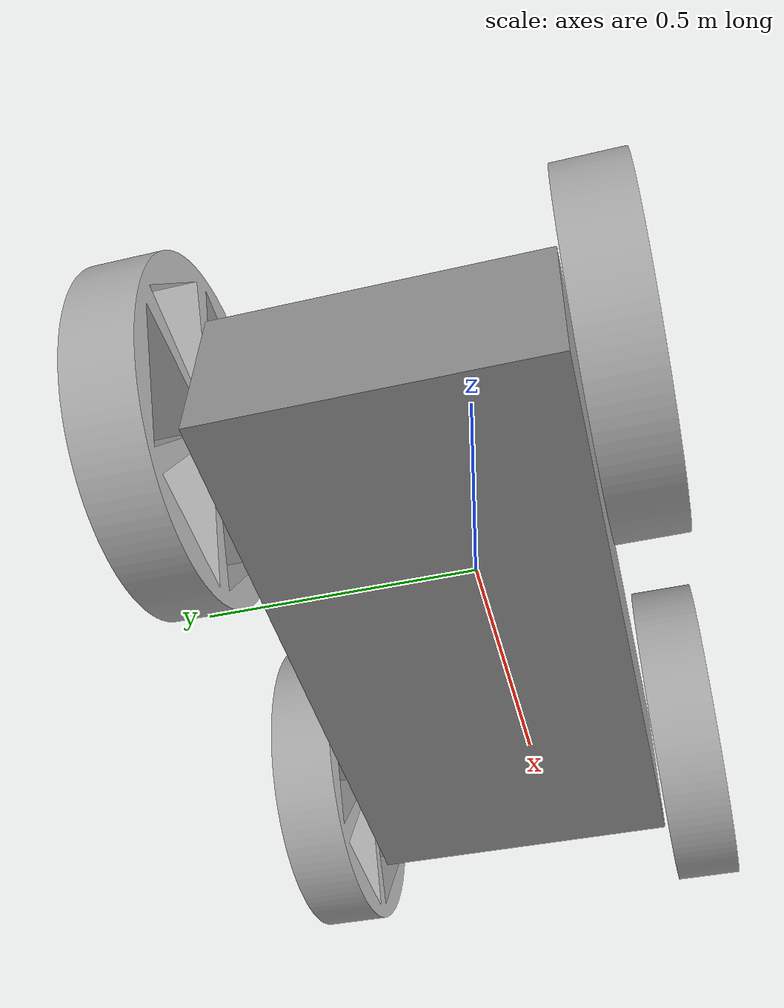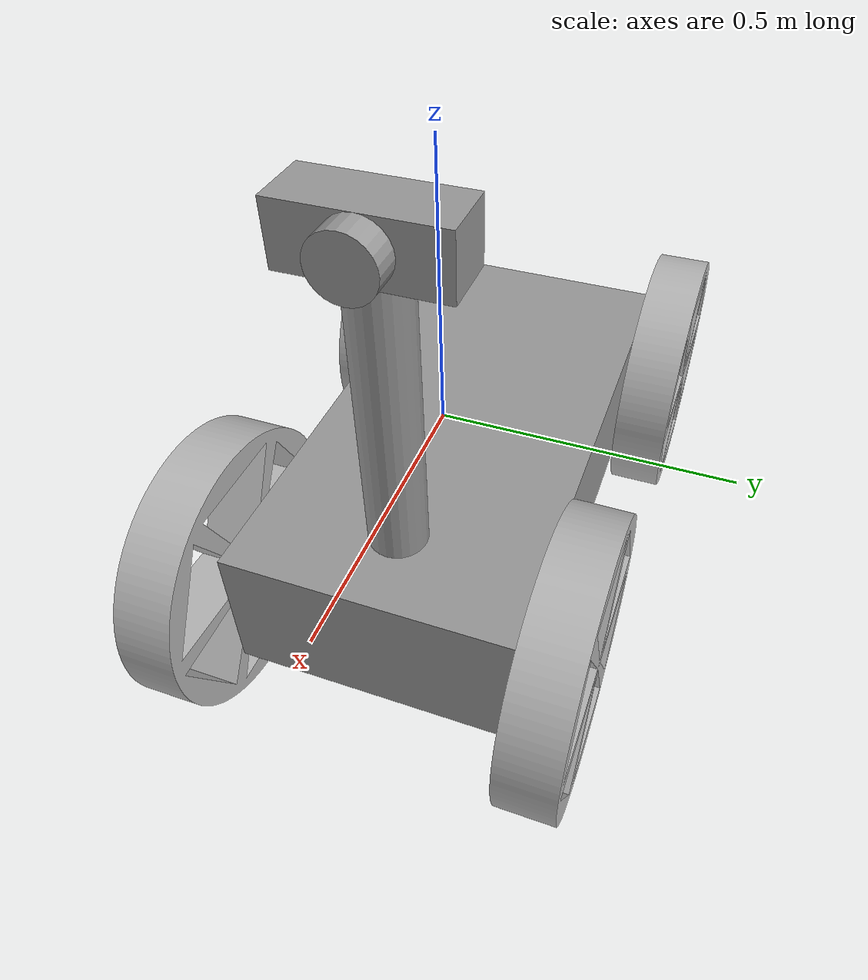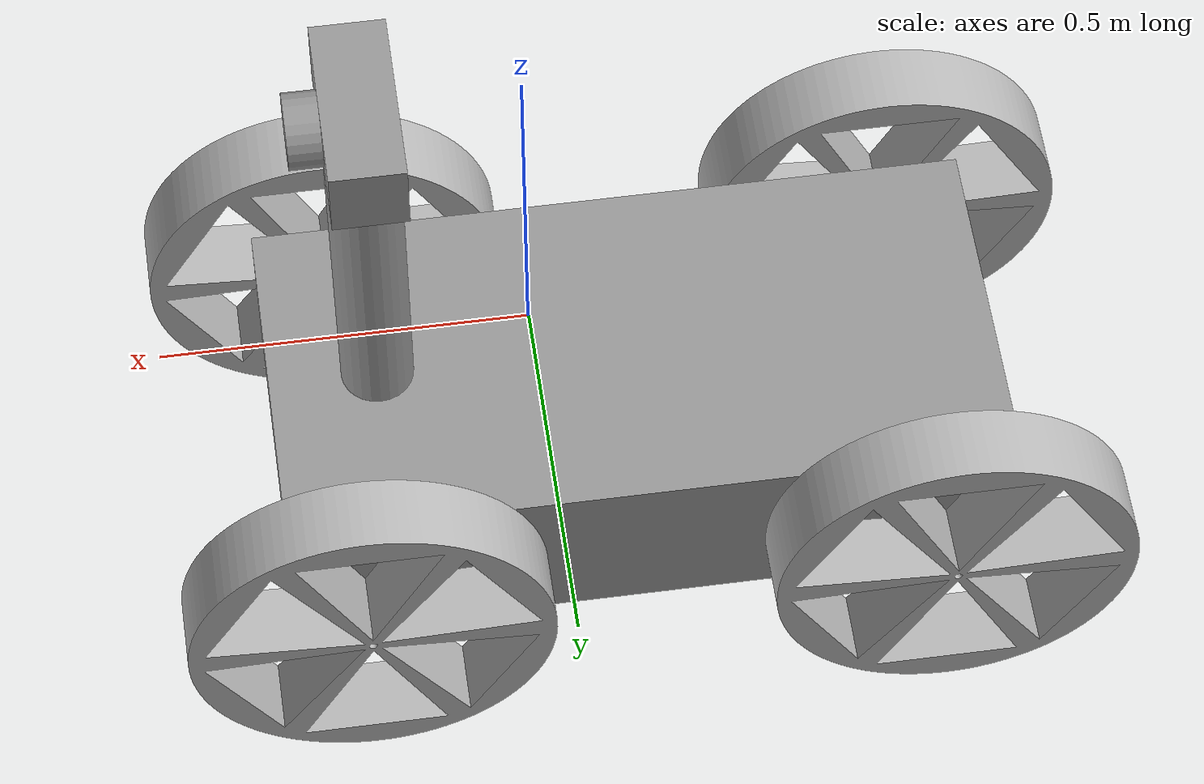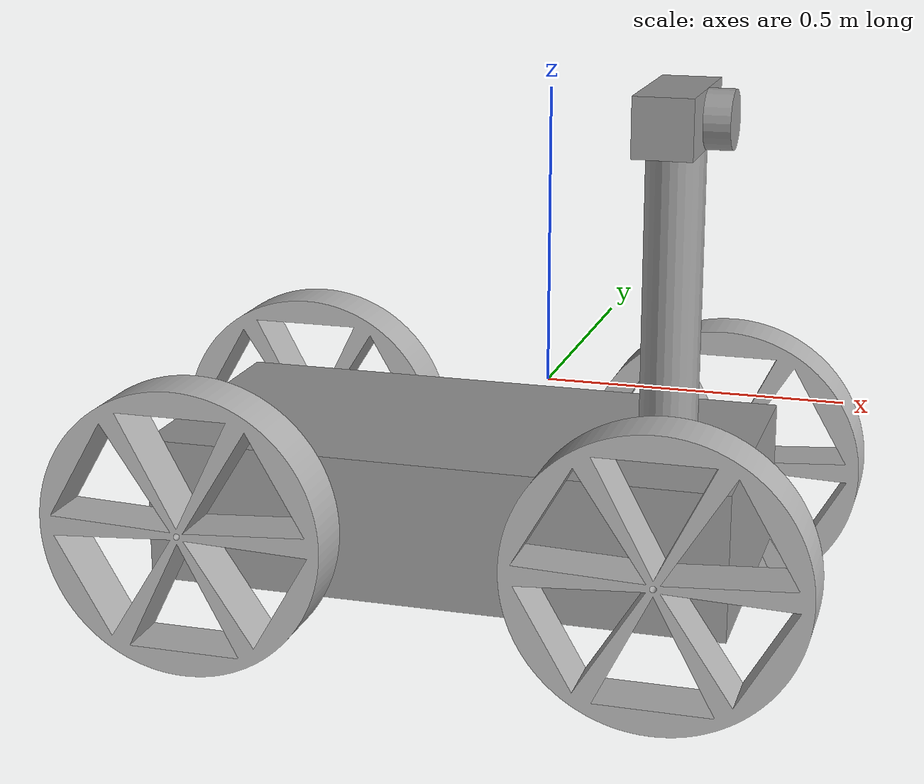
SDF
<?xml version='1.0'?>
<sdf version='1.7'>
  <model name='mobile_camera'>
    <link name='link_0'>
      <inertial>
        <mass>1</mass>
        <inertia>
          <ixx>0.166667</ixx>
          <ixy>0</ixy>
          <ixz>0</ixz>
          <iyy>0.166667</iyy>
          <iyz>0</iyz>
          <izz>0.166667</izz>
        </inertia>
        <pose>0 0 0 0 -0 0</pose>
      </inertial>
      <pose>-0.14 0 -0.215625 0 -0 0</pose>
      <gravity>1</gravity>
      <self_collide>0</self_collide>
      <kinematic>0</kinematic>
      <enable_wind>0</enable_wind>
      <visual name='visual'>
        <pose>0 0 0 0 -0 0</pose>
        <geometry>
          <box>
            <size>1 0.5 0.25</size>
          </box>
        </geometry>
        <material>
          <lighting>1</lighting>
          <script>
            <uri>file://media/materials/scripts/gazebo.material</uri>
            <name>Gazebo/Grey</name>
          </script>
          <shader type='pixel'>
            <normal_map>__default__</normal_map>
          </shader>
          <ambient>0.3 0.3 0.3 1</ambient>
          <diffuse>0.7 0.7 0.7 1</diffuse>
          <specular>0.01 0.01 0.01 1</specular>
          <emissive>0 0 0 1</emissive>
        </material>
        <transparency>0</transparency>
        <cast_shadows>1</cast_shadows>
      </visual>
      <collision name='collision'>
        <laser_retro>0</laser_retro>
        <max_contacts>10</max_contacts>
        <pose>0 0 0 0 -0 0</pose>
        <geometry>
          <box>
            <size>1 0.5 0.25</size>
          </box>
        </geometry>
        <surface>
          <friction>
            <ode>
              <mu>1</mu>
              <mu2>1</mu2>
              <fdir1>0 0 0</fdir1>
              <slip1>0</slip1>
              <slip2>0</slip2>
            </ode>
            <torsional>
              <coefficient>1</coefficient>
              <patch_radius>0</patch_radius>
              <surface_radius>0</surface_radius>
              <use_patch_radius>1</use_patch_radius>
              <ode>
                <slip>0</slip>
              </ode>
            </torsional>
          </friction>
          <bounce>
            <restitution_coefficient>0</restitution_coefficient>
            <threshold>1e+06</threshold>
          </bounce>
          <contact>
            <collide_without_contact>0</collide_without_contact>
            <collide_without_contact_bitmask>1</collide_without_contact_bitmask>
            <collide_bitmask>1</collide_bitmask>
            <ode>
              <soft_cfm>0</soft_cfm>
              <soft_erp>0.2</soft_erp>
              <kp>1e+13</kp>
              <kd>1</kd>
              <max_vel>0.01</max_vel>
              <min_depth>0</min_depth>
            </ode>
            <bullet>
              <split_impulse>1</split_impulse>
              <split_impulse_penetration_threshold>-0.01</split_impulse_penetration_threshold>
              <soft_cfm>0</soft_cfm>
              <soft_erp>0.2</soft_erp>
              <kp>1e+13</kp>
              <kd>1</kd>
            </bullet>
          </contact>
        </surface>
      </collision>
    </link>
    <link name='link_2'>
      <inertial>
        <mass>1</mass>
        <inertia>
          <ixx>0.145833</ixx>
          <ixy>0</ixy>
          <ixz>0</ixz>
          <iyy>0.145833</iyy>
          <iyz>0</iyz>
          <izz>0.125</izz>
        </inertia>
        <pose>0 0 0 0 -0 0</pose>
      </inertial>
      <pose>0.26 0.31 -0.215625 1.5708 -0 0</pose>
      <gravity>1</gravity>
      <self_collide>0</self_collide>
      <kinematic>0</kinematic>
      <enable_wind>0</enable_wind>
      <visual name='visual'>
        <pose>0 0 0 1.5708 -0 0</pose>
        <geometry>
          <mesh>
            <uri>file:///home/yousef/ros2_cpp_ws/src/cpp_pkg/models/meshes/wheel_red.obj</uri>
            <scale>1 1 1</scale>
          </mesh>
        </geometry>
      </visual>
      <collision name='collision'>
        <laser_retro>0</laser_retro>
        <max_contacts>10</max_contacts>
        <pose>0 0 0 0 -0 0</pose>
        <geometry>
          <cylinder>
            <radius>0.25</radius>
            <length>0.1</length>
          </cylinder>
        </geometry>
        <surface>
          <friction>
            <ode>
              <mu>1</mu>
              <mu2>1</mu2>
              <fdir1>0 0 0</fdir1>
              <slip1>0</slip1>
              <slip2>0</slip2>
            </ode>
            <torsional>
              <coefficient>1</coefficient>
              <patch_radius>0</patch_radius>
              <surface_radius>0</surface_radius>
              <use_patch_radius>1</use_patch_radius>
              <ode>
                <slip>0</slip>
              </ode>
            </torsional>
          </friction>
          <bounce>
            <restitution_coefficient>0</restitution_coefficient>
            <threshold>1e+06</threshold>
          </bounce>
          <contact>
            <collide_without_contact>0</collide_without_contact>
            <collide_without_contact_bitmask>1</collide_without_contact_bitmask>
            <collide_bitmask>1</collide_bitmask>
            <ode>
              <soft_cfm>0</soft_cfm>
              <soft_erp>0.2</soft_erp>
              <kp>1e+13</kp>
              <kd>1</kd>
              <max_vel>0.01</max_vel>
              <min_depth>0</min_depth>
            </ode>
            <bullet>
              <split_impulse>1</split_impulse>
              <split_impulse_penetration_threshold>-0.01</split_impulse_penetration_threshold>
              <soft_cfm>0</soft_cfm>
              <soft_erp>0.2</soft_erp>
              <kp>1e+13</kp>
              <kd>1</kd>
            </bullet>
          </contact>
        </surface>
      </collision>
    </link>
    <link name='link_2_clone'>
      <inertial>
        <mass>1</mass>
        <inertia>
          <ixx>0.145833</ixx>
          <ixy>0</ixy>
          <ixz>0</ixz>
          <iyy>0.145833</iyy>
          <iyz>0</iyz>
          <izz>0.125</izz>
        </inertia>
        <pose>0 0 0 0 -0 0</pose>
      </inertial>
      <pose>0.26 -0.31 -0.215625 1.5708 -0 0</pose>
      <gravity>1</gravity>
      <self_collide>0</self_collide>
      <kinematic>0</kinematic>
      <enable_wind>0</enable_wind>
      <visual name='visual'>
        <pose>0 0 0 1.5708 -0 0</pose>
        <geometry>
          <mesh>
            <uri>file:///home/yousef/ros2_cpp_ws/src/cpp_pkg/models/meshes/wheel_red.obj</uri>
            <scale>1 1 1</scale>
          </mesh>
        </geometry>
      </visual>
      <collision name='collision'>
        <laser_retro>0</laser_retro>
        <max_contacts>10</max_contacts>
        <pose>0 0 0 0 -0 0</pose>
        <geometry>
          <cylinder>
            <radius>0.25</radius>
            <length>0.1</length>
          </cylinder>
        </geometry>
        <surface>
          <friction>
            <ode>
              <mu>1</mu>
              <mu2>1</mu2>
              <fdir1>0 0 0</fdir1>
              <slip1>0</slip1>
              <slip2>0</slip2>
            </ode>
            <torsional>
              <coefficient>1</coefficient>
              <patch_radius>0</patch_radius>
              <surface_radius>0</surface_radius>
              <use_patch_radius>1</use_patch_radius>
              <ode>
                <slip>0</slip>
              </ode>
            </torsional>
          </friction>
          <bounce>
            <restitution_coefficient>0</restitution_coefficient>
            <threshold>1e+06</threshold>
          </bounce>
          <contact>
            <collide_without_contact>0</collide_without_contact>
            <collide_without_contact_bitmask>1</collide_without_contact_bitmask>
            <collide_bitmask>1</collide_bitmask>
            <ode>
              <soft_cfm>0</soft_cfm>
              <soft_erp>0.2</soft_erp>
              <kp>1e+13</kp>
              <kd>1</kd>
              <max_vel>0.01</max_vel>
              <min_depth>0</min_depth>
            </ode>
            <bullet>
              <split_impulse>1</split_impulse>
              <split_impulse_penetration_threshold>-0.01</split_impulse_penetration_threshold>
              <soft_cfm>0</soft_cfm>
              <soft_erp>0.2</soft_erp>
              <kp>1e+13</kp>
              <kd>1</kd>
            </bullet>
          </contact>
        </surface>
      </collision>
    </link>
    <link name='link_2_clone_0'>
      <inertial>
        <mass>1</mass>
        <inertia>
          <ixx>0.145833</ixx>
          <ixy>0</ixy>
          <ixz>0</ixz>
          <iyy>0.145833</iyy>
          <iyz>0</iyz>
          <izz>0.125</izz>
        </inertia>
        <pose>0 0 0 0 -0 0</pose>
      </inertial>
      <pose>-0.54 0.31 -0.215625 1.5708 -0 0</pose>
      <gravity>1</gravity>
      <self_collide>0</self_collide>
      <kinematic>0</kinematic>
      <enable_wind>0</enable_wind>
      <visual name='visual'>
        <pose>0 0 0 1.5708 -0 0</pose>
        <geometry>
          <mesh>
            <uri>file:///home/yousef/ros2_cpp_ws/src/cpp_pkg/models/meshes/wheel_red.obj</uri>
            <scale>1 1 1</scale>
          </mesh>
        </geometry>
      </visual>
      <collision name='collision'>
        <laser_retro>0</laser_retro>
        <max_contacts>10</max_contacts>
        <pose>0 0 0 0 -0 0</pose>
        <geometry>
          <cylinder>
            <radius>0.25</radius>
            <length>0.1</length>
          </cylinder>
        </geometry>
        <surface>
          <friction>
            <ode>
              <mu>0.1</mu>
              <mu2>0.1</mu2>
              <fdir1>0 0 0</fdir1>
              <slip1>0</slip1>
              <slip2>0</slip2>
            </ode>
            <torsional>
              <coefficient>1</coefficient>
              <patch_radius>0</patch_radius>
              <surface_radius>0</surface_radius>
              <use_patch_radius>1</use_patch_radius>
              <ode>
                <slip>0</slip>
              </ode>
            </torsional>
          </friction>
          <bounce>
            <restitution_coefficient>0</restitution_coefficient>
            <threshold>1e+06</threshold>
          </bounce>
          <contact>
            <collide_without_contact>0</collide_without_contact>
            <collide_without_contact_bitmask>1</collide_without_contact_bitmask>
            <collide_bitmask>1</collide_bitmask>
            <ode>
              <soft_cfm>0</soft_cfm>
              <soft_erp>0.2</soft_erp>
              <kp>1e+13</kp>
              <kd>1</kd>
              <max_vel>0.01</max_vel>
              <min_depth>0</min_depth>
            </ode>
            <bullet>
              <split_impulse>1</split_impulse>
              <split_impulse_penetration_threshold>-0.01</split_impulse_penetration_threshold>
              <soft_cfm>0</soft_cfm>
              <soft_erp>0.2</soft_erp>
              <kp>1e+13</kp>
              <kd>1</kd>
            </bullet>
          </contact>
        </surface>
      </collision>
    </link>
    <link name='link_2_clone_1'>
      <inertial>
        <mass>1</mass>
        <inertia>
          <ixx>0.145833</ixx>
          <ixy>0</ixy>
          <ixz>0</ixz>
          <iyy>0.145833</iyy>
          <iyz>0</iyz>
          <izz>0.125</izz>
        </inertia>
        <pose>0 0 0 0 -0 0</pose>
      </inertial>
      <pose>-0.54 -0.31 -0.215625 1.5708 -0 0</pose>
      <gravity>1</gravity>
      <self_collide>0</self_collide>
      <kinematic>0</kinematic>
      <enable_wind>0</enable_wind>
      <visual name='visual'>
        <pose>0 0 0 1.5708 -0 0</pose>
        <geometry>
          <mesh>
            <uri>file:///home/yousef/ros2_cpp_ws/src/cpp_pkg/models/meshes/wheel_red.obj</uri>
            <scale>1 1 1</scale>
          </mesh>
        </geometry>
      </visual>
      <collision name='collision'>
        <laser_retro>0</laser_retro>
        <max_contacts>10</max_contacts>
        <pose>0 0 0 0 -0 0</pose>
        <geometry>
          <cylinder>
            <radius>0.25</radius>
            <length>0.1</length>
          </cylinder>
        </geometry>
        <surface>
          <friction>
            <ode>
              <mu>0.1</mu>
              <mu2>0.1</mu2>
              <fdir1>0 0 0</fdir1>
              <slip1>0</slip1>
              <slip2>0</slip2>
            </ode>
            <torsional>
              <coefficient>1</coefficient>
              <patch_radius>0</patch_radius>
              <surface_radius>0</surface_radius>
              <use_patch_radius>1</use_patch_radius>
              <ode>
                <slip>0</slip>
              </ode>
            </torsional>
          </friction>
          <bounce>
            <restitution_coefficient>0</restitution_coefficient>
            <threshold>1e+06</threshold>
          </bounce>
          <contact>
            <collide_without_contact>0</collide_without_contact>
            <collide_without_contact_bitmask>1</collide_without_contact_bitmask>
            <collide_bitmask>1</collide_bitmask>
            <ode>
              <soft_cfm>0</soft_cfm>
              <soft_erp>0.2</soft_erp>
              <kp>1e+13</kp>
              <kd>1</kd>
              <max_vel>0.01</max_vel>
              <min_depth>0</min_depth>
            </ode>
            <bullet>
              <split_impulse>1</split_impulse>
              <split_impulse_penetration_threshold>-0.01</split_impulse_penetration_threshold>
              <soft_cfm>0</soft_cfm>
              <soft_erp>0.2</soft_erp>
              <kp>1e+13</kp>
              <kd>1</kd>
            </bullet>
          </contact>
        </surface>
      </collision>
    </link>
    <link name='link_3'>
      <inertial>
        <mass>1</mass>
        <inertia>
          <ixx>0.145833</ixx>
          <ixy>0</ixy>
          <ixz>0</ixz>
          <iyy>0.145833</iyy>
          <iyz>0</iyz>
          <izz>0.125</izz>
        </inertia>
        <pose>0 0 0 0 -0 0</pose>
      </inertial>
      <pose>0.21 0 0.159375 0 -0 0</pose>
      <gravity>1</gravity>
      <self_collide>0</self_collide>
      <kinematic>0</kinematic>
      <enable_wind>0</enable_wind>
      <visual name='visual'>
        <pose>0 0 0 0 -0 0</pose>
        <geometry>
          <cylinder>
            <radius>0.05</radius>
            <length>0.5</length>
          </cylinder>
        </geometry>
        <material>
          <lighting>1</lighting>
          <script>
            <uri>file://media/materials/scripts/gazebo.material</uri>
            <name>Gazebo/Grey</name>
          </script>
          <shader type='pixel'>
            <normal_map>__default__</normal_map>
          </shader>
          <ambient>0.3 0.3 0.3 1</ambient>
          <diffuse>0.7 0.7 0.7 1</diffuse>
          <specular>0.01 0.01 0.01 1</specular>
          <emissive>0 0 0 1</emissive>
        </material>
        <transparency>0</transparency>
        <cast_shadows>1</cast_shadows>
      </visual>
      <collision name='collision'>
        <laser_retro>0</laser_retro>
        <max_contacts>10</max_contacts>
        <pose>0 0 0 0 -0 0</pose>
        <geometry>
          <cylinder>
            <radius>0.05</radius>
            <length>0.5</length>
          </cylinder>
        </geometry>
        <surface>
          <friction>
            <ode>
              <mu>1</mu>
              <mu2>1</mu2>
              <fdir1>0 0 0</fdir1>
              <slip1>0</slip1>
              <slip2>0</slip2>
            </ode>
            <torsional>
              <coefficient>1</coefficient>
              <patch_radius>0</patch_radius>
              <surface_radius>0</surface_radius>
              <use_patch_radius>1</use_patch_radius>
              <ode>
                <slip>0</slip>
              </ode>
            </torsional>
          </friction>
          <bounce>
            <restitution_coefficient>0</restitution_coefficient>
            <threshold>1e+06</threshold>
          </bounce>
          <contact>
            <collide_without_contact>0</collide_without_contact>
            <collide_without_contact_bitmask>1</collide_without_contact_bitmask>
            <collide_bitmask>1</collide_bitmask>
            <ode>
              <soft_cfm>0</soft_cfm>
              <soft_erp>0.2</soft_erp>
              <kp>1e+13</kp>
              <kd>1</kd>
              <max_vel>0.01</max_vel>
              <min_depth>0</min_depth>
            </ode>
            <bullet>
              <split_impulse>1</split_impulse>
              <split_impulse_penetration_threshold>-0.01</split_impulse_penetration_threshold>
              <soft_cfm>0</soft_cfm>
              <soft_erp>0.2</soft_erp>
              <kp>1e+13</kp>
              <kd>1</kd>
            </bullet>
          </contact>
        </surface>
      </collision>
    </link>
    <link name='link_4'>
      <inertial>
        <mass>1</mass>
        <inertia>
          <ixx>0.166667</ixx>
          <ixy>0</ixy>
          <ixz>0</ixz>
          <iyy>0.166667</iyy>
          <iyz>0</iyz>
          <izz>0.166667</izz>
        </inertia>
        <pose>0 0 0 0 -0 0</pose>
      </inertial>
      <pose>0.21 0 0.459375 0 -0 0</pose>
      <gravity>1</gravity>
      <self_collide>0</self_collide>
      <kinematic>0</kinematic>
      <enable_wind>0</enable_wind>
      <visual name='visual'>
        <pose>0 0 0 0 -0 0</pose>
        <geometry>
          <box>
            <size>0.1 0.25 0.1</size>
          </box>
        </geometry>
        <material>
          <lighting>1</lighting>
          <script>
            <uri>file://media/materials/scripts/gazebo.material</uri>
            <name>Gazebo/Grey</name>
          </script>
          <shader type='pixel'>
            <normal_map>__default__</normal_map>
          </shader>
          <ambient>0.3 0.3 0.3 1</ambient>
          <diffuse>0.7 0.7 0.7 1</diffuse>
          <specular>0.01 0.01 0.01 1</specular>
          <emissive>0 0 0 1</emissive>
        </material>
        <transparency>0</transparency>
        <cast_shadows>1</cast_shadows>
      </visual>
      <collision name='collision'>
        <laser_retro>0</laser_retro>
        <max_contacts>10</max_contacts>
        <pose>0 0 0 0 -0 0</pose>
        <geometry>
          <box>
            <size>0.1 0.25 0.1</size>
          </box>
        </geometry>
        <surface>
          <friction>
            <ode>
              <mu>1</mu>
              <mu2>1</mu2>
              <fdir1>0 0 0</fdir1>
              <slip1>0</slip1>
              <slip2>0</slip2>
            </ode>
            <torsional>
              <coefficient>1</coefficient>
              <patch_radius>0</patch_radius>
              <surface_radius>0</surface_radius>
              <use_patch_radius>1</use_patch_radius>
              <ode>
                <slip>0</slip>
              </ode>
            </torsional>
          </friction>
          <bounce>
            <restitution_coefficient>0</restitution_coefficient>
            <threshold>1e+06</threshold>
          </bounce>
          <contact>
            <collide_without_contact>0</collide_without_contact>
            <collide_without_contact_bitmask>1</collide_without_contact_bitmask>
            <collide_bitmask>1</collide_bitmask>
            <ode>
              <soft_cfm>0</soft_cfm>
              <soft_erp>0.2</soft_erp>
              <kp>1e+13</kp>
              <kd>1</kd>
              <max_vel>0.01</max_vel>
              <min_depth>0</min_depth>
            </ode>
            <bullet>
              <split_impulse>1</split_impulse>
              <split_impulse_penetration_threshold>-0.01</split_impulse_penetration_threshold>
              <soft_cfm>0</soft_cfm>
              <soft_erp>0.2</soft_erp>
              <kp>1e+13</kp>
              <kd>1</kd>
            </bullet>
          </contact>
        </surface>
      </collision>
      <sensor name="camera" type="camera">
        <pose>0.25 0 0 0 0 0</pose>
        <camera>
          <horizontal_fov>1.047</horizontal_fov>
          <image>
            <width>640</width>
            <height>480</height>
          </image>
          <clip>
            <near>0.1</near>
            <far>100</far>
          </clip>
        </camera>
        <always_on>1</always_on>
        <update_rate>60</update_rate>
        <visualize>true</visualize>
        <topic>camera</topic>
      </sensor>
    </link>
    <link name='link_5'>
      <inertial>
        <mass>1</mass>
        <inertia>
          <ixx>0.145833</ixx>
          <ixy>0</ixy>
          <ixz>0</ixz>
          <iyy>0.145833</iyy>
          <iyz>0</iyz>
          <izz>0.125</izz>
        </inertia>
        <pose>0 0 0 0 -0 0</pose>
      </inertial>
      <pose>0.28 0 0.459375 3.14159 1.57079 3.14159</pose>
      <gravity>1</gravity>
      <self_collide>0</self_collide>
      <kinematic>0</kinematic>
      <enable_wind>0</enable_wind>
      <visual name='visual'>
        <pose>0 0 0 0 -0 0</pose>
        <geometry>
          <cylinder>
            <radius>0.05</radius>
            <length>0.05</length>
          </cylinder>
        </geometry>
        <material>
          <lighting>1</lighting>
          <script>
            <uri>file://media/materials/scripts/gazebo.material</uri>
            <name>Gazebo/Grey</name>
          </script>
          <shader type='pixel'>
            <normal_map>__default__</normal_map>
          </shader>
          <ambient>0.3 0.3 0.3 1</ambient>
          <diffuse>0.7 0.7 0.7 1</diffuse>
          <specular>0.01 0.01 0.01 1</specular>
          <emissive>0 0 0 1</emissive>
        </material>
        <transparency>0</transparency>
        <cast_shadows>1</cast_shadows>
      </visual>
      <collision name='collision'>
        <laser_retro>0</laser_retro>
        <max_contacts>10</max_contacts>
        <pose>0 0 0 0 -0 0</pose>
        <geometry>
          <cylinder>
            <radius>0.05</radius>
            <length>0.05</length>
          </cylinder>
        </geometry>
        <surface>
          <friction>
            <ode>
              <mu>1</mu>
              <mu2>1</mu2>
              <fdir1>0 0 0</fdir1>
              <slip1>0</slip1>
              <slip2>0</slip2>
            </ode>
            <torsional>
              <coefficient>1</coefficient>
              <patch_radius>0</patch_radius>
              <surface_radius>0</surface_radius>
              <use_patch_radius>1</use_patch_radius>
              <ode>
                <slip>0</slip>
              </ode>
            </torsional>
          </friction>
          <bounce>
            <restitution_coefficient>0</restitution_coefficient>
            <threshold>1e+06</threshold>
          </bounce>
          <contact>
            <collide_without_contact>0</collide_without_contact>
            <collide_without_contact_bitmask>1</collide_without_contact_bitmask>
            <collide_bitmask>1</collide_bitmask>
            <ode>
              <soft_cfm>0</soft_cfm>
              <soft_erp>0.2</soft_erp>
              <kp>1e+13</kp>
              <kd>1</kd>
              <max_vel>0.01</max_vel>
              <min_depth>0</min_depth>
            </ode>
            <bullet>
              <split_impulse>1</split_impulse>
              <split_impulse_penetration_threshold>-0.01</split_impulse_penetration_threshold>
              <soft_cfm>0</soft_cfm>
              <soft_erp>0.2</soft_erp>
              <kp>1e+13</kp>
              <kd>1</kd>
            </bullet>
          </contact>
        </surface>
      </collision>
    </link>
    <joint name='link_0_JOINT_0' type='revolute'>
      <parent>link_0</parent>
      <child>link_2</child>
      <pose>0 0 0 0 -0 0</pose>
      <axis>
        <xyz>-0 -0 -1</xyz>
        <limit>
          <lower>-1.79769e+308</lower>
          <upper>1.79769e+308</upper>
          <effort>-1</effort>
          <velocity>-1</velocity>
        </limit>
        <dynamics>
          <spring_reference>0</spring_reference>
          <spring_stiffness>0</spring_stiffness>
          <damping>0</damping>
        </dynamics>
      </axis>
      <physics>
        <ode>
          <limit>
            <cfm>0</cfm>
            <erp>0.2</erp>
          </limit>
          <suspension>
            <cfm>0</cfm>
            <erp>0.2</erp>
          </suspension>
        </ode>
      </physics>
    </joint>
    <joint name='link_0_JOINT_1' type='revolute'>
      <parent>link_0</parent>
      <child>link_2_clone</child>
      <pose>0 0 0 0 -0 0</pose>
      <axis>
        <xyz>-0 -0 -1</xyz>
        <limit>
          <lower>-1.79769e+308</lower>
          <upper>1.79769e+308</upper>
          <effort>-1</effort>
          <velocity>-1</velocity>
        </limit>
        <dynamics>
          <spring_reference>0</spring_reference>
          <spring_stiffness>0</spring_stiffness>
          <damping>0</damping>
        </dynamics>
      </axis>
      <physics>
        <ode>
          <limit>
            <cfm>0</cfm>
            <erp>0.2</erp>
          </limit>
          <suspension>
            <cfm>0</cfm>
            <erp>0.2</erp>
          </suspension>
        </ode>
      </physics>
    </joint>
    <joint name='link_0_JOINT_2' type='revolute'>
      <parent>link_0</parent>
      <child>link_2_clone_0</child>
      <pose>0 0 0 0 -0 0</pose>
      <axis>
        <xyz>-0 -0 -1</xyz>
        <limit>
          <lower>-1.79769e+308</lower>
          <upper>1.79769e+308</upper>
          <effort>-1</effort>
          <velocity>-1</velocity>
        </limit>
        <dynamics>
          <spring_reference>0</spring_reference>
          <spring_stiffness>0</spring_stiffness>
          <damping>0</damping>
        </dynamics>
      </axis>
      <physics>
        <ode>
          <limit>
            <cfm>0</cfm>
            <erp>0.2</erp>
          </limit>
          <suspension>
            <cfm>0</cfm>
            <erp>0.2</erp>
          </suspension>
        </ode>
      </physics>
    </joint>
    <joint name='link_0_JOINT_3' type='revolute'>
      <parent>link_0</parent>
      <child>link_2_clone_1</child>
      <pose>0 0 0 0 -0 0</pose>
      <axis>
        <xyz>-0 -0 -1</xyz>
        <limit>
          <lower>-1.79769e+308</lower>
          <upper>1.79769e+308</upper>
          <effort>-1</effort>
          <velocity>-1</velocity>
        </limit>
        <dynamics>
          <spring_reference>0</spring_reference>
          <spring_stiffness>0</spring_stiffness>
          <damping>0</damping>
        </dynamics>
      </axis>
      <physics>
        <ode>
          <limit>
            <cfm>0</cfm>
            <erp>0.2</erp>
          </limit>
          <suspension>
            <cfm>0</cfm>
            <erp>0.2</erp>
          </suspension>
        </ode>
      </physics>
    </joint>
    <joint name='link_0_JOINT_4' type='revolute'>
      <parent>link_0</parent>
      <child>link_3</child>
      <pose>0 0 0 0 -0 0</pose>
      <axis>
        <xyz>0 0 1</xyz>
        <limit>
          <lower>-1.79769e+308</lower>
          <upper>1.79769e+308</upper>
          <effort>-1</effort>
          <velocity>-1</velocity>
        </limit>
        <dynamics>
          <spring_reference>0</spring_reference>
          <spring_stiffness>0</spring_stiffness>
          <damping>0.5</damping>
        </dynamics>
      </axis>
      <physics>
        <ode>
          <limit>
            <cfm>0</cfm>
            <erp>0.2</erp>
          </limit>
          <suspension>
            <cfm>0</cfm>
            <erp>0.2</erp>
          </suspension>
        </ode>
      </physics>
    </joint>
    <joint name='link_3_JOINT_5' type='fixed'>
      <parent>link_3</parent>
      <child>link_4</child>
      <pose>0 0 0 0 -0 0</pose>
      <physics>
        <ode>
          <limit>
            <cfm>0</cfm>
            <erp>0.2</erp>
          </limit>
          <suspension>
            <cfm>0</cfm>
            <erp>0.2</erp>
          </suspension>
        </ode>
      </physics>
    </joint>
    <joint name='link_4_JOINT_6' type='fixed'>
      <parent>link_4</parent>
      <child>link_5</child>
      <pose>0 0 0 0 -0 0</pose>
      <physics>
        <ode>
          <limit>
            <cfm>0</cfm>
            <erp>0.2</erp>
          </limit>
          <suspension>
            <cfm>0</cfm>
            <erp>0.2</erp>
          </suspension>
        </ode>
      </physics>
    </joint>
    <static>0</static>
    <allow_auto_disable>1</allow_auto_disable>
    <plugin
    filename="ignition-gazebo-diff-drive-system"
    name="gz::sim::systems::DiffDrive">
      <left_joint>link_0_JOINT_0</left_joint>
      <right_joint>link_0_JOINT_1</right_joint>
      <wheel_separation>0.62</wheel_separation>
      <wheel_radius>0.25</wheel_radius>
      <max_linear_acceleration>1</max_linear_acceleration>
      <min_linear_acceleration>-1</min_linear_acceleration>
      <max_angular_acceleration>2</max_angular_acceleration>
      <min_angular_acceleration>-2</min_angular_acceleration>
      <max_linear_velocity>3</max_linear_velocity>
      <min_linear_velocity>-3</min_linear_velocity>
      <max_angular_velocity>1</max_angular_velocity>
      <min_angular_velocity>-1</min_angular_velocity>
      <topic>/cmd_vel</topic>
    </plugin>
    <plugin
    filename="ignition-gazebo-diff-drive-system"
    name="gz::sim::systems::DiffDrive">
      <left_joint>link_0_JOINT_2</left_joint>
      <right_joint>link_0_JOINT_3</right_joint>
      <wheel_separation>0.62</wheel_separation>
      <wheel_radius>0.25</wheel_radius>
      <max_linear_acceleration>1</max_linear_acceleration>
      <min_linear_acceleration>-1</min_linear_acceleration>
      <max_angular_acceleration>2</max_angular_acceleration>
      <min_angular_acceleration>-2</min_angular_acceleration>
      <max_linear_velocity>3</max_linear_velocity>
      <min_linear_velocity>-3</min_linear_velocity>
      <max_angular_velocity>1</max_angular_velocity>
      <min_angular_velocity>-1</min_angular_velocity>
      <topic>/cmd_vel</topic>
    </plugin>
    <plugin
    filename="ignition-gazebo-joint-position-controller-system"
    name="gz::sim::systems::JointPositionController">
    <joint_name>link_0_JOINT_4</joint_name>
    <topic>rotor_cmd</topic>
    <p_gain>1</p_gain>
    <i_gain>0.1</i_gain>
    <d_gain>0.01</d_gain>
    <i_max>1</i_max>
    <i_min>-1</i_min>
    <cmd_max>1000</cmd_max>
    <cmd_min>-1000</cmd_min>
  </plugin>
  </model>
</sdf>
